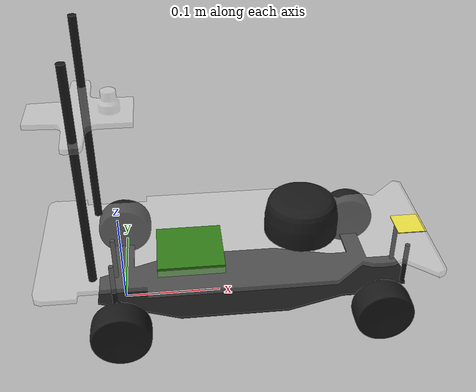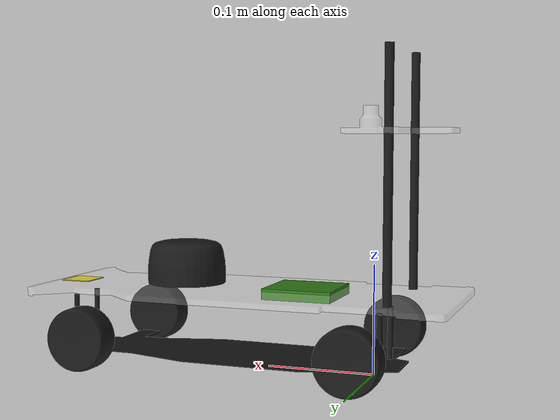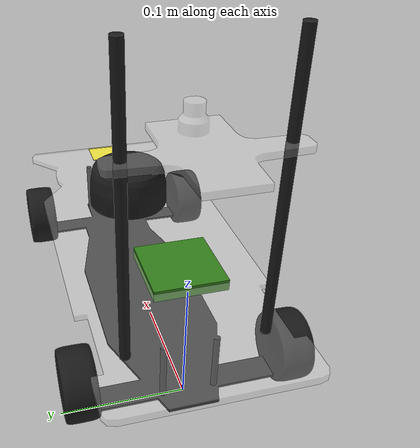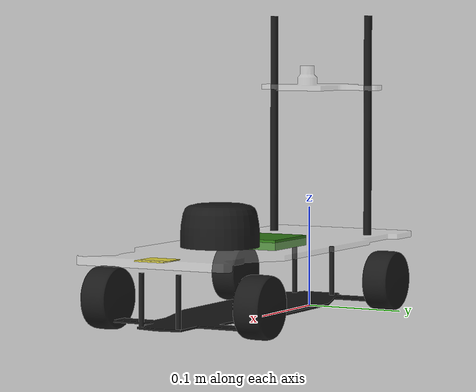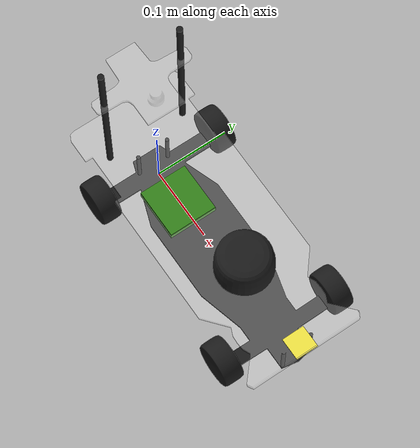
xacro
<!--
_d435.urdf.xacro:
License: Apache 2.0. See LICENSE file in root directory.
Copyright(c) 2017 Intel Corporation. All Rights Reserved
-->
<?xml version="1.0"?>
<robot name="car" xmlns:xacro="http://www.ros.org/wiki/xacro">
  <xacro:include filename="$(find car_description)/urdf/_d435.urdf.xacro"/>
  <xacro:include filename="$(find car_description)/urdf/common.xacro"/>

  <material name="black">
    <color rgba="0.1 0.1 0.1 1"/>
  </material>

  <material name="plastic">
    <color rgba="1 1 1 0.25"/>
  </material>

  <material name="imu">
    <color rgba="0.2 0.5 0.1 1"/>
  </material>

  <material name="grey">
    <color rgba="0.75 0.75 0.75 1"/>
  </material>

  <material name="white">
    <color rgba="0.95 0.95 0.95 1"/>
  </material>

  <link name="base_link">
    <visual>
      <origin rpy="0.0 0 0" xyz="0.135 0 0.01"/>
      <geometry>
        <mesh filename="package://car_description/meshes/chasi.dae"/>
      </geometry>
      <material name="black"/>
    </visual>
    <collision>
      <origin rpy="0.0 0 0" xyz="0.135 0 0.01"/>
      <geometry>
        <mesh filename="package://car_description/meshes/chasi.dae"/>
      </geometry>
    </collision>
  </link>

  <link name="board">
    <visual>
      <origin rpy="0.0 0 0" xyz="0.115 0 0"/>
      <geometry>
        <mesh filename="package://car_description/meshes/board.dae"/>
      </geometry>
      <material name="plastic"/>
    </visual>
    <collision>
      <origin rpy="0.0 0 0" xyz="0.115 0 0"/>
      <geometry>
        <mesh filename="package://car_description/meshes/board.dae"/>
      </geometry>
    </collision>
    <inertial>
      <origin rpy="0.0 0 0" xyz="0.115 0 0"/>
      <mass value="1.0"/>
      <inertia ixx="0.00213542" ixy="0.0" ixz="0.0" iyy="0.01235417" iyz="0.0" izz="0.01448542"/>
    </inertial>
  </link>

  <link name="camera_board">
    <visual>
      <origin rpy="0.0 0 0" xyz="0 0 0"/>
      <geometry>
        <mesh filename="package://car_description/meshes/camera_board.dae"/>
      </geometry>
      <material name="plastic"/>
    </visual>
    <collision>
      <origin rpy="0.0 0 0" xyz="0 0 0"/>
      <geometry>
        <mesh filename="package://car_description/meshes/camera_board.dae"/>
      </geometry>
    </collision>
    <inertial>
      <origin rpy="0.0 0 0" xyz="0 0 0"/>
      <mass value="0.1"/>
      <inertia ixx="0.00014165" ixy="0.0" ixz="0.0" iyy="0.00006758" iyz="0.0" izz="0.00020865"/>
    </inertial>
  </link>

  <link name="laser">
    <visual>
      <origin rpy="0.0 0 0" xyz="0 0 -0.02"/>
      <geometry>
        <mesh filename="package://car_description/meshes/laser.dae"/>
      </geometry>
      <material name="black"/>
    </visual>
    <collision>
       <origin rpy="0.0 0 0" xyz="0 0 -0.02"/>
      <geometry>
        <mesh filename="package://car_description/meshes/laser.dae"/>
      </geometry>
    </collision>
    <inertial>
      <mass value="0.1"/>
      <inertia ixx="0.00005965" ixy="0.0" ixz="0.0" iyy="0.00005759" iyz="0.0" izz="0.00009268"/>
    </inertial>
  </link>

  <xacro:macro name="wheel" params="name">
    <link name="${name}">
      <visual>
        <origin rpy="0 0 0" xyz="0 0 0"/>
        <geometry>
          <mesh filename="package://car_description/meshes/wheel.dae"/>
        </geometry>
        <material name="black"/>
      </visual>
      <collision>
        <origin rpy="0 1.5707 1.5707" xyz="0 0 0"/>
        <geometry>
          <cylinder length="0.025" radius="0.0325" />
        </geometry>
      </collision>

      <xacro:cylinder_inertial_with_origin radius="0.025" length="0.0325" mass="0.05" >
        <origin xyz="0 0 0" rpy="0 1.5707 1.5707" />
      </xacro:cylinder_inertial_with_origin>
    </link>
    <gazebo reference="${name}">
      <minDepth>0.005</minDepth>
      <min_depth>0.005</min_depth>
      <surface>
        <friction>
          <ode>
            <mu>1.0</mu>
            <mu2>1.0</mu2>
            <fdir1>0 0 1</fdir1>
            <slip1>0.0</slip1>
            <slip2>0.0</slip2>
          </ode>
        </friction>
        <contact>
          <ode>
            <soft_cfm>0.000000001</soft_cfm>
            <soft_erp>0.2</soft_erp>
            <kp>1e+10</kp>
            <kd>10</kd>
            <max_vel>0.01</max_vel>
            <min_depth>0.005</min_depth>
          </ode>
        </contact>
      </surface>
  </gazebo>
  </xacro:macro>

  <xacro:wheel name="wheel_fr"/>
  <xacro:wheel name="wheel_fl"/>
  <xacro:wheel name="wheel_br"/>
  <xacro:wheel name="wheel_bl"/>

  <link name="axis_fl">
    <visual>
      <origin rpy="0.0 0 0" xyz="0 0 0"/>
      <geometry>
        <box size="0.001 0.001 0.001"/>
      </geometry>
      <material name="black"/>
    </visual>
    <collision>
      <geometry>
        <box size="0.001 0.001 0.001"/>
      </geometry>
    </collision>
    <inertial>
      <mass value="0.1"/>
      <inertia ixx="0.00000002" ixy="0.0" ixz="0.0" iyy="0.00000002" iyz="0.0" izz="0.00000002"/>
    </inertial>
  </link>

  <link name="axis_fr">
    <visual>
      <origin rpy="0.0 0 0" xyz="0 0 0"/>
      <geometry>
        <box size="0.001 0.001 0.001"/>
      </geometry>
      <material name="black"/>
    </visual>
    <collision>
      <geometry>
        <box size="0.001 0.001 0.001"/>
      </geometry>
    </collision>
    <inertial>
      <mass value="0.1"/>
      <inertia ixx="0.00000002" ixy="0.0" ixz="0.0" iyy="0.00000002" iyz="0.0" izz="0.00000002"/>
    </inertial>
  </link>

  <link name="imu">
    <visual>
      <geometry>
        <box size="0.066 0.064 0.01"/>
      </geometry>
      <origin rpy="0 0 0" xyz="0 0 0"/>
      <material name="imu"/>
    </visual>
    <collision>
      <geometry>
        <box size="0.066 0.064 0.01"/>
      </geometry>
    </collision>
    <inertial>
      <mass value="0.2"/>
      <inertia ixx="0.00006993" ixy="0.0" ixz="0.0" iyy="0.00007427" iyz="0.0" izz="0.00014087"/>
    </inertial>
  </link>

  <link name="marker">
    <visual>
      <geometry>
        <mesh filename="package://car_description/meshes/marker.dae"/>
      </geometry>
      <origin rpy="0 0 1.5708" xyz="0 0 0"/>

    </visual>
    <collision>
      <geometry>
        <box size="0.03 0.03 0.000001"/>
      </geometry>
    </collision>
    <inertial>
      <mass value="0.001"/>
      <inertia ixx="0.00000008" ixy="0.0" ixz="0.0" iyy="0.00000008" iyz="0.0" izz="0.00000015"/>
    </inertial>
  </link>

  <link name="support_l">
    <visual>
      <geometry>
        <cylinder length="0.22" radius="0.004"/>
      </geometry>
      <origin rpy="0 0 0" xyz="0 0 0"/>
      <material name="black"/>
    </visual>
    <collision>
      <geometry>
        <cylinder length="0.22" radius="0.004"/>
      </geometry>
    </collision>
    <inertial>
      <mass value="0.001"/>
      <inertia ixx="0.00000404" ixy="0.0" ixz="0.0" iyy="0.00000404" iyz="0.0" izz="0.00000001"/>
    </inertial>
  </link>

  <link name="support_r">
    <visual>
      <geometry>
        <cylinder length="0.22" radius="0.004"/>
      </geometry>
      <origin rpy="0 0 0" xyz="0 0 0"/>
      <material name="black"/>
    </visual>
    <collision>
      <geometry>
        <cylinder length="0.22" radius="0.004"/>
      </geometry>
    </collision>
    <inertial>
      <mass value="0.001"/>
      <inertia ixx="0.00000404" ixy="0.0" ixz="0.0" iyy="0.00000404" iyz="0.0" izz="0.00000001"/>
    </inertial>
  </link>

  <!-- BNO055 -->
  <link name="bno055">
  </link>

  <!-- front camera -->
  <xacro:property name="front_camera_name" value="camera"/>

  <sensor_d435 parent="camera_board" sensor_name="camera">
    <origin xyz="0.03 0 0.025" rpy="0 0.2 0"/>
  </sensor_d435>

  <sensor_d435 parent="camera_board" sensor_name="rear_camera">
    <origin xyz="-0.02 0 0.025" rpy="0 0.2 3.141"/>
  </sensor_d435>

  <joint name="joint_board_to_bno055" type="fixed">
      <parent link="board"/>
      <child link="bno055"/>
      <origin xyz="0.235 0.0 0.023" rpy="0 0 1.5708"/>
  </joint>

  <joint name="base_link_board" type="fixed">
    <parent link="base_link"/>
    <child link="board"/>
    <origin xyz="0 0 0.07"/>
  </joint>

  <joint name="board_cameraboard" type="fixed">
    <parent link="board"/>
    <child link="camera_board"/>
    <origin xyz="-0.025 0 0.15"/>
  </joint>

  <joint name="board_laser" type="fixed">
    <parent link="board"/>
    <child link="laser"/>
    <origin rpy="0 0 3.14159" xyz="0.185 0 0.025"/>
  </joint>

  <joint name="board_imu" type="fixed">
    <parent link="board"/>
    <child link="imu"/>
    <origin xyz="0.07 -0.017 0"/>
  </joint>

  <joint name="board_marker" type="fixed">
    <parent link="board"/>
    <child link="marker"/>
    <origin xyz="0.30 0 0.0025"/>
  </joint>

  <joint name="frontwheel_steering_left" type="revolute">
    <axis xyz="0 0 1"/>
    <limit effort="1000.0" lower="-0.55" upper="0.55" velocity="2"/>
    <parent link="base_link"/>
    <child link="axis_fl"/>
    <origin xyz="0.255 0.08 0.03"/>
  </joint>

  <joint name="frontwheel_steering_right" type="revolute">
    <axis xyz="0 0 1"/>
    <limit effort="1000.0" lower="-0.55" upper="0.55" velocity="2"/>
    <parent link="base_link"/>
    <child link="axis_fr"/>
    <origin xyz="0.255 -0.08 0.03"/>
  </joint>

  <joint name="frontwheel_left" type="revolute">
    <axis xyz="0 1 0"/>
    <anchor xyz="0 0 0"/>
    <parent link="axis_fl"/>
    <child link="wheel_fl"/>
    <origin xyz="0 0 0"/>
    <limit effort="0.1" lower="-1000000000000.0" upper="1000000000000.0" velocity="124"/>
  </joint>

  <joint name="frontwheel_right" type="revolute">
    <axis xyz="0 1 0"/>
    <parent link="axis_fr"/>
    <child link="wheel_fr"/>
    <origin xyz="0 0 0"/>
    <limit effort="0.1" lower="-1000000000000.0" upper="1000000000000.0" velocity="124"/>
  </joint>

   <joint name="rearwheel_left" type="revolute">
    <axis xyz="0 1 0"/>
    <parent link="base_link"/>
    <child link="wheel_bl"/>
    <origin xyz="0 0.085 0.03"/>
    <limit effort="0.1" lower="-1000000000000.0" upper="1000000000000.0" velocity="124"/>
   </joint>

  <joint name="rearwheel_right" type="revolute">
    <axis xyz="0 1 0"/>
    <parent link="base_link"/>
    <child link="wheel_br"/>
    <origin xyz="0 -0.085 0.03"/>
    <limit effort="0.1" lower="-1000000000000.0" upper="1000000000000.0" velocity="124"/>
  </joint>

  <joint name="board_support_l" type="fixed">
    <parent link="board"/>
    <child link="support_l"/>
    <origin xyz="-0.024000 0.053000 0.112000"/>
  </joint>

  <joint name="board_support_r" type="fixed">
    <parent link="board"/>
    <child link="support_r"/>
    <origin xyz="-0.024000 -0.053000 0.112000"/>
  </joint>

  <transmission name="steering_front_left_wheel">
    <type>transmission_interface/SimpleTransmission</type>
    <joint name="frontwheel_steering_left">
      <hardwareInterface>hardware_interface/EffortJointInterface</hardwareInterface>
    </joint>
    <actuator name="front_left_steering_motor">
      <hardwareInterface>hardware_interface/EffortJointInterface</hardwareInterface>
      <mechanicalReduction>1</mechanicalReduction>
    </actuator>
  </transmission>

  <transmission name="steering_front_right_wheel">
    <type>transmission_interface/SimpleTransmission</type>
    <joint name="frontwheel_steering_right">
      <hardwareInterface>hardware_interface/EffortJointInterface</hardwareInterface>
    </joint>
    <actuator name="front_right_steering_motor">
      <hardwareInterface>hardware_interface/EffortJointInterface</hardwareInterface>
      <mechanicalReduction>1</mechanicalReduction>
    </actuator>
  </transmission>

  <transmission name="tran_front_left_wheel">
    <type>transmission_interface/SimpleTransmission</type>
    <joint name="frontwheel_left">
      <hardwareInterface>hardware_interface/EffortJointInterface</hardwareInterface>
    </joint>
    <actuator name="front_left_wheel_motor">
      <hardwareInterface>hardware_interface/EffortJointInterface</hardwareInterface>
      <mechanicalReduction>1</mechanicalReduction>
    </actuator>
  </transmission>

  <transmission name="tran_front_right_wheel">
    <type>transmission_interface/SimpleTransmission</type>
    <joint name="frontwheel_right">
      <hardwareInterface>hardware_interface/EffortJointInterface</hardwareInterface>
    </joint>
    <actuator name="front_right_wheel_motor">
      <hardwareInterface>hardware_interface/EffortJointInterface</hardwareInterface>
      <mechanicalReduction>1</mechanicalReduction>
    </actuator>
  </transmission>

  <transmission name="tran_rear_left">
    <type>transmission_interface/SimpleTransmission</type>
    <joint name="rearwheel_left">
      <hardwareInterface>hardware_interface/EffortJointInterface</hardwareInterface>
    </joint>
    <actuator name="rear_left_motor">
      <hardwareInterface>hardware_interface/EffortJointInterface</hardwareInterface>
      <mechanicalReduction>1</mechanicalReduction>
    </actuator>
  </transmission>

  <transmission name="tran_rear_right">
    <type>transmission_interface/SimpleTransmission</type>
    <joint name="rearwheel_right">
      <hardwareInterface>hardware_interface/EffortJointInterface</hardwareInterface>
    </joint>
    <actuator name="rear_right_motor">
      <hardwareInterface>hardware_interface/EffortJointInterface</hardwareInterface>
      <mechanicalReduction>1</mechanicalReduction>
    </actuator>
  </transmission>

  <gazebo reference="rearwheel_left">
    <implicitSpringDamper>true</implicitSpringDamper>
  </gazebo>
  <gazebo reference="rearwheel_right">
    <implicitSpringDamper>true</implicitSpringDamper>
  </gazebo>
  <gazebo reference="frontwheel_right">
    <implicitSpringDamper>true</implicitSpringDamper>
  </gazebo>
  <gazebo reference="frontwheel_left">
    <implicitSpringDamper>true</implicitSpringDamper>
  </gazebo>
  <gazebo reference="frontwheel_steering_right">
    <implicitSpringDamper>true</implicitSpringDamper>
  </gazebo>
  <gazebo reference="frontwheel_steering_left">
    <implicitSpringDamper>true</implicitSpringDamper>
  </gazebo>

  <gazebo>
    <plugin filename="libgazebo_ros_control.so" name="gazebo_ros_control">
      <robotNamespace>model_car</robotNamespace>
    </plugin>
  </gazebo>

  <gazebo>
    <plugin name="model_car_ground_truth" filename="libgazebo_ros_p3d.so">
      <frameName>map</frameName>
      <bodyName>base_link</bodyName>
      <topicName>/simulation/odom_ground_truth</topicName>
      <updateRate>30.0</updateRate>
    </plugin>
  </gazebo>

  <gazebo>
    <plugin filename="libhector_gazebo_ros_imu.so" name="autominy_imu">
      <updateRate>100.0</updateRate>
      <robotNamespace>/</robotNamespace>
      <bodyName>imu</bodyName>
      <frameId>imu</frameId>
      <topicName>sensors/imu</topicName>
      <accelOffset>0 0 0</accelOffset>
      <accelDrift>0.5 0.5 0.5</accelDrift>
      <accelGaussianNoise>0.15 0.15 0.1</accelGaussianNoise>
      <rateOffset>0 0 0</rateOffset>
      <rateDrift>0.0 0.0 0.0</rateDrift>
      <rateGaussianNoise>0.005 0.005 0.0015</rateGaussianNoise>
      <headingOffset>0</headingOffset>
      <headingDrift>0.1</headingDrift>
      <headingGaussianNoise>0.05</headingGaussianNoise>
    </plugin>
  </gazebo>

  <gazebo reference="camera_depth_frame">
    <sensor type="depth" name="camera1">
      <always_on>1</always_on>
      <visualize>true</visualize>
      <update_rate>15.0</update_rate>
      <camera>
        <pose>0 0 0 0 0.20 0</pose>
        <horizontal_fov>1.3900031938640904</horizontal_fov>
        <image>
          <width>640</width>
          <height>480</height>
          <format>L8</format>
        </image>
        <depth_camera>
        </depth_camera>
        <clip>
          <near>0.01</near>
          <far>50.0</far>
        </clip>
        <noise>
          <type>gaussian</type>
          <mean>0.0</mean>
          <stddev>0.007</stddev>
        </noise>
      </camera>
      <plugin name="camera_controller" filename="libgazebo_ros_openni_kinect.so">
        <alwaysOn>true</alwaysOn>
        <updateRate>15.0</updateRate>
        <cameraName>sensors/camera</cameraName>
        <frameName>camera_depth_optical_frame</frameName>
        <imageTopicName>infra1/image_rect_raw</imageTopicName>
        <cameraInfoTopicName>infra1/camera_info</cameraInfoTopicName>
        <depthImageTopicName>depth/image_rect_raw</depthImageTopicName>
        <pointCloudTopicName>depth/points</pointCloudTopicName>
        <depthImageCameraInfoTopicName>depth/camera_info</depthImageCameraInfoTopicName>
        <pointCloudCutoff>0.4</pointCloudCutoff>
        <hackBaseline>0.007</hackBaseline>
        <CxPrime>322.3056945800781</CxPrime>
        <Cx>322.3056945800781</Cx>
        <Cy>241.67051696777344</Cy>
        <focalLength>383.7944641113281</focalLength>
        <noise>
          <type>gaussian</type>
          <mean>0.0</mean>
          <stddev>0.01</stddev>
        </noise>
      </plugin>
    </sensor>
  </gazebo>

  <gazebo reference="camera_color_frame">
    <sensor type="camera" name="camera2">
      <update_rate>15.0</update_rate>
      <camera>
        <pose>0 0 0.02 0 0.20 0</pose>
        <horizontal_fov>0.95417536656506718</horizontal_fov>
        <image>
          <width>640</width>
          <height>480</height>
          <format>R8G8B8</format>
        </image>
        <clip>
          <near>0.01</near>
          <far>50.0</far>
        </clip>
        <noise>
          <type>gaussian</type>
          <mean>0.0</mean>
          <stddev>0.01</stddev>
        </noise>
      </camera>
      <plugin name="camera_controller2" filename="libgazebo_ros_camera.so">
        <alwaysOn>true</alwaysOn>
        <updateRate>15.0</updateRate>
        <cameraName>sensors/camera/color</cameraName>
        <imageTopicName>image_rect_color</imageTopicName>
        <cameraInfoTopicName>camera_info</cameraInfoTopicName>
        <frameName>camera_color_optical_frame</frameName>
        <hackBaseline>0.0193</hackBaseline>
        <distortionK1>0.0</distortionK1>
        <distortionK2>0.0</distortionK2>
        <distortionK3>0.0</distortionK3>
        <distortionT1>0.0</distortionT1>
        <distortionT2>0.0</distortionT2>
      </plugin>
    </sensor>
  </gazebo>

  <gazebo reference="laser">
    <sensor type="ray" name="rp_lidar_sensor">
      <pose>0 0 0 0 0 0</pose>
      <visualize>false</visualize>
      <update_rate>10</update_rate>
      <ray>
        <scan>
          <horizontal>
            <samples>360</samples>
            <min_angle>-3.14159</min_angle>
            <max_angle>3.14159</max_angle>
          </horizontal>
        </scan>
        <range>
          <min>0.15</min>
          <max>8.0</max>
          <resolution>0.05</resolution>
        </range>
        <noise>
          <type>gaussian</type>
          <mean>0.0</mean>
          <stddev>0.01</stddev>
        </noise>
      </ray>
      <plugin name="gazebo_ros_head_hokuyo_controller" filename="libgazebo_ros_laser.so">
        <topicName>/sensors/rplidar/scan</topicName>
        <frameName>laser</frameName>
      </plugin>
    </sensor>
  </gazebo>
  <gazebo reference="wheel_fl">
    <mu1>1.34</mu1>
    <mu2>1.34</mu2>
  </gazebo>
  <gazebo reference="wheel_fr">
    <mu1>1.34</mu1>
    <mu2>1.34</mu2>
  </gazebo>
  <gazebo reference="wheel_br">
    <mu1>1.34</mu1>
    <mu2>1.34</mu2>
  </gazebo>
  <gazebo reference="wheel_bl">
    <mu1>1.34</mu1>
    <mu2>1.34</mu2>
  </gazebo>

  <gazebo reference="support_r">
    <material>Gazebo/Black</material>
  </gazebo>

  <gazebo reference="support_l">
    <material>Gazebo/Black</material>
  </gazebo>
</robot>

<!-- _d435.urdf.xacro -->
<robot name="sensor_d435" xmlns:xacro="http://ros.org/wiki/xacro">
  <xacro:macro name="sensor_d435" params="sensor_name parent *origin">
    <xacro:property name="M_PI" value="3.1415926535897931" />

    <!-- The following values are approximate, and the camera node
     publishing TF values with actual calibrated camera extrinsic values -->
    <xacro:property name="d435_cam_depth_to_left_ir_offset" value="0.0"/>
    <xacro:property name="d435_cam_depth_to_right_ir_offset" value="-0.050"/>
    <xacro:property name="d435_cam_depth_to_color_offset" value="0.015"/>

    <!-- The following values model the aluminum peripherial case for the
  	D435 camera, with the camera joint represented by the actual
  	peripherial camera tripod mount -->
    <xacro:property name="d435_cam_width" value="0.090"/>
    <xacro:property name="d435_cam_height" value="0.025"/>
    <xacro:property name="d435_cam_depth" value="0.02505"/>
    <xacro:property name="d435_cam_mount_from_center_offset" value="0.0149"/>

    <!-- The following offset is relative the the physical D435 camera peripherial
  	camera tripod mount -->
    <xacro:property name="d435_cam_depth_px" value="${d435_cam_mount_from_center_offset}"/>
    <xacro:property name="d435_cam_depth_py" value="0.0175"/>
    <xacro:property name="d435_cam_depth_pz" value="${d435_cam_height/2}"/>

    <material name="${sensor_name}aluminum">
      <color rgba="0.5 0.5 0.5 1"/>
    </material>

    <!-- camera body, with origin at bottom screw mount -->
    <joint name="${sensor_name}_joint" type="fixed">
      <xacro:insert_block name="origin" />
      <parent link="${parent}"/>
      <child link="${sensor_name}_bottom_screw_frame" />
    </joint>
    <link name="${sensor_name}_bottom_screw_frame"/>

    <joint name="${sensor_name}_link_joint" type="fixed">
      <origin xyz="0 ${d435_cam_depth_py} ${d435_cam_depth_pz}" rpy="0 0 0"/>
      <parent link="${sensor_name}_bottom_screw_frame"/>
      <child link="${sensor_name}_link" />
    </joint>

    <link name="${sensor_name}_link">
      <collision>
        <origin xyz="0 ${-d435_cam_depth_py} 0" rpy="0 0 0"/>
        <geometry>
          <box size="${d435_cam_depth} ${d435_cam_width} ${d435_cam_height}"/>
        </geometry>
      </collision>
      <inertial>
        <!-- The following are not reliable values, and should not be used for modeling -->
        <mass value="0.1" />
        <origin xyz="0 0 0" />
        <inertia ixx="0.003881243" ixy="0.0" ixz="0.0" iyy="0.000498940" iyz="0.0" izz="0.003879257" />
      </inertial>
    </link>

    <!-- camera depth joints and links -->
    <joint name="${sensor_name}_depth_joint" type="fixed">
      <origin xyz="0 0 0" rpy="0 0 0"/>
      <parent link="${sensor_name}_link"/>
      <child link="${sensor_name}_depth_frame" />
    </joint>
    <link name="${sensor_name}_depth_frame"/>

    <joint name="${sensor_name}_depth_optical_joint" type="fixed">
      <origin xyz="0 0 0" rpy="${-M_PI/2} 0 ${-M_PI/2}" />
      <parent link="${sensor_name}_depth_frame" />
      <child link="${sensor_name}_depth_optical_frame" />
    </joint>
    <link name="${sensor_name}_depth_optical_frame"/>

    <!-- camera left IR joints and links -->
    <joint name="${sensor_name}_left_ir_joint" type="fixed">
      <origin xyz="0 ${d435_cam_depth_to_left_ir_offset} 0" rpy="0 0 0" />
      <parent link="${sensor_name}_depth_frame" />
      <child link="${sensor_name}_left_ir_frame" />
    </joint>
    <link name="${sensor_name}_left_ir_frame"/>

    <joint name="${sensor_name}_left_ir_optical_joint" type="fixed">
      <origin xyz="0 0 0" rpy="${-M_PI/2} 0 ${-M_PI/2}" />
      <parent link="${sensor_name}_left_ir_frame" />
      <child link="${sensor_name}_left_ir_optical_frame" />
    </joint>
    <link name="${sensor_name}_left_ir_optical_frame"/>

    <!-- camera right IR joints and links -->
    <joint name="${sensor_name}_right_ir_joint" type="fixed">
      <origin xyz="0 ${d435_cam_depth_to_right_ir_offset} 0" rpy="0 0 0" />
      <parent link="${sensor_name}_depth_frame" />
      <child link="${sensor_name}_right_ir_frame" />
    </joint>
    <link name="${sensor_name}_right_ir_frame"/>

    <joint name="${sensor_name}_right_ir_optical_joint" type="fixed">
      <origin xyz="0 0 0" rpy="${-M_PI/2} 0 ${-M_PI/2}" />
      <parent link="${sensor_name}_right_ir_frame" />
      <child link="${sensor_name}_right_ir_optical_frame" />
    </joint>
    <link name="${sensor_name}_right_ir_optical_frame"/>

    <!-- camera color joints and links -->
    <joint name="${sensor_name}_color_joint" type="fixed">
      <origin xyz="0 ${d435_cam_depth_to_color_offset} 0" rpy="0 0 0" />
      <parent link="${sensor_name}_depth_frame" />
      <child link="${sensor_name}_color_frame" />
    </joint>
    <link name="${sensor_name}_color_frame"/>

    <joint name="${sensor_name}_color_optical_joint" type="fixed">
      <origin xyz="0 0 0" rpy="${-M_PI/2} 0 ${-M_PI/2}" />
      <parent link="${sensor_name}_color_frame" />
      <child link="${sensor_name}_color_optical_frame" />
    </joint>
    <link name="${sensor_name}_color_optical_frame"/>
  </xacro:macro>
</robot>

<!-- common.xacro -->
<robot
        xmlns:xacro="http://ros.org/wiki/xacro">
    <property name="M_PI" value="3.1415926535897931" />

    <!-- see https://secure.wikimedia.org/wikipedia/en/wiki/List_of_moment_of_inertia_tensors -->

    <!-- #################### versions without origin #################### -->
    <xacro:macro name="sphere_inertial" params="radius mass">
        <inertial>
            <mass value="${mass}" />
            <origin xyz="0 0 0" />
            <inertia ixx="${0.4 * mass * radius * radius}" ixy="0.0" ixz="0.0"
                     iyy="${0.4 * mass * radius * radius}" iyz="0.0"
                     izz="${0.4 * mass * radius * radius}" />
        </inertial>
    </xacro:macro>

    <xacro:macro name="cylinder_inertial" params="radius length mass">
        <inertial>
            <mass value="${mass}" />
            <origin xyz="0 0 0" />
            <inertia ixx="${0.0833333 * mass * (3 * radius * radius + length * length)}" ixy="0.0" ixz="0.0"
                     iyy="${0.0833333 * mass * (3 * radius * radius + length * length)}" iyz="0.0"
                     izz="${0.5 * mass * radius * radius}" />
        </inertial>
    </xacro:macro>

    <xacro:macro name="box_inertial" params="x y z mass">
        <inertial>
            <mass value="${mass}" />
            <origin xyz="0 0 0" />
            <inertia ixx="${0.0833333 * mass * (y*y + z*z)}" ixy="0.0" ixz="0.0"
                     iyy="${0.0833333 * mass * (x*x + z*z)}" iyz="0.0"
                     izz="${0.0833333 * mass * (x*x + y*y)}" />
        </inertial>
    </xacro:macro>

    <!-- #################### versions with origin #################### -->
    <xacro:macro name="sphere_inertial_with_origin" params="radius mass *origin">
        <inertial>
            <mass value="${mass}" />
            <insert_block name="origin" />
            <inertia ixx="${0.4 * mass * radius * radius}" ixy="0.0" ixz="0.0"
                     iyy="${0.4 * mass * radius * radius}" iyz="0.0"
                     izz="${0.4 * mass * radius * radius}" />
        </inertial>
    </xacro:macro>

    <xacro:macro name="cylinder_inertial_with_origin" params="radius length mass *origin">
        <inertial>
            <mass value="${mass}" />
            <insert_block name="origin" />
            <inertia ixx="${0.0833333 * mass * (3 * radius * radius + length * length)}" ixy="0.0" ixz="0.0"
                     iyy="${0.0833333 * mass * (3 * radius * radius + length * length)}" iyz="0.0"
                     izz="${0.5 * mass * radius * radius}" />
        </inertial>
    </xacro:macro>

    <xacro:macro name="box_inertial_with_origin" params="x y z mass *origin">
        <inertial>
            <mass value="${mass}" />
            <insert_block name="origin" />
            <inertia ixx="${0.0833333 * mass * (y*y + z*z)}" ixy="0.0" ixz="0.0"
                     iyy="${0.0833333 * mass * (x*x + z*z)}" iyz="0.0"
                     izz="${0.0833333 * mass * (x*x + y*y)}" />
        </inertial>
    </xacro:macro>

</robot>
